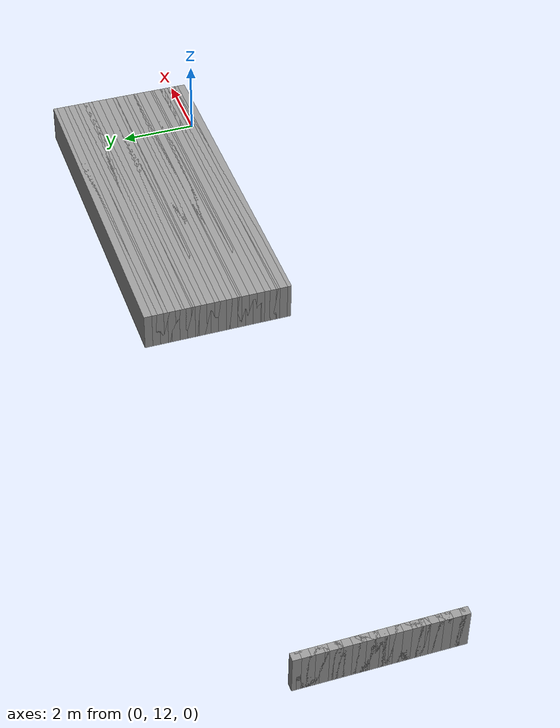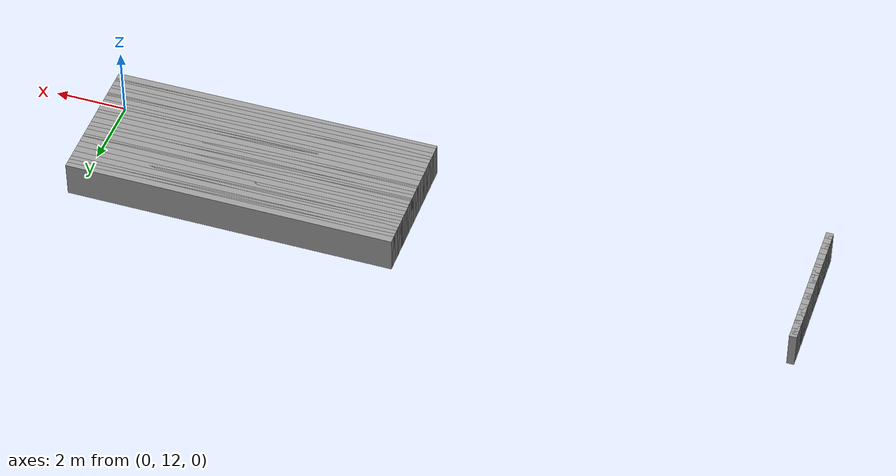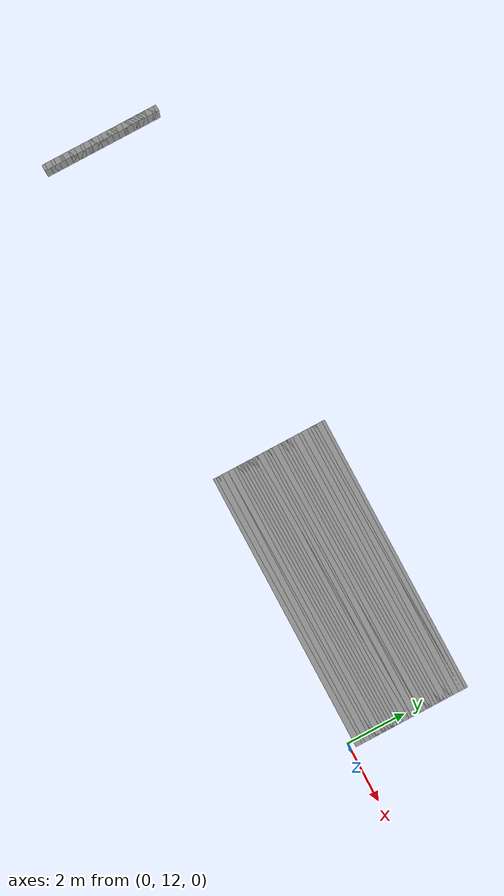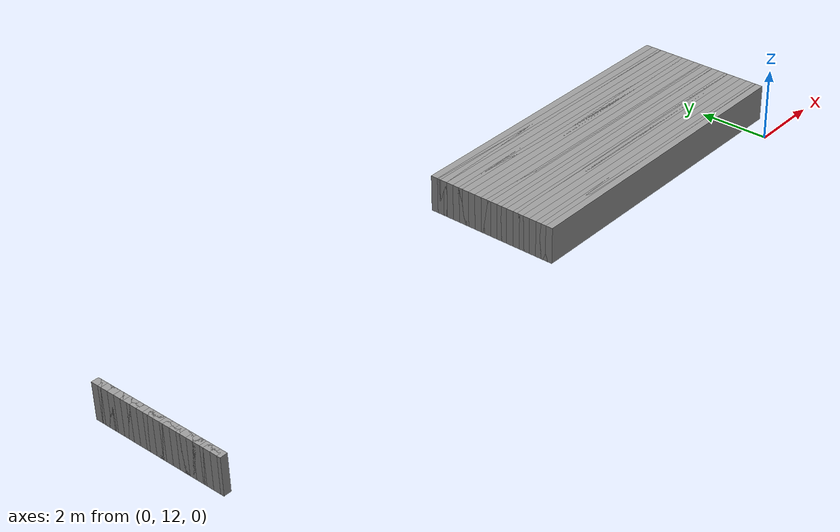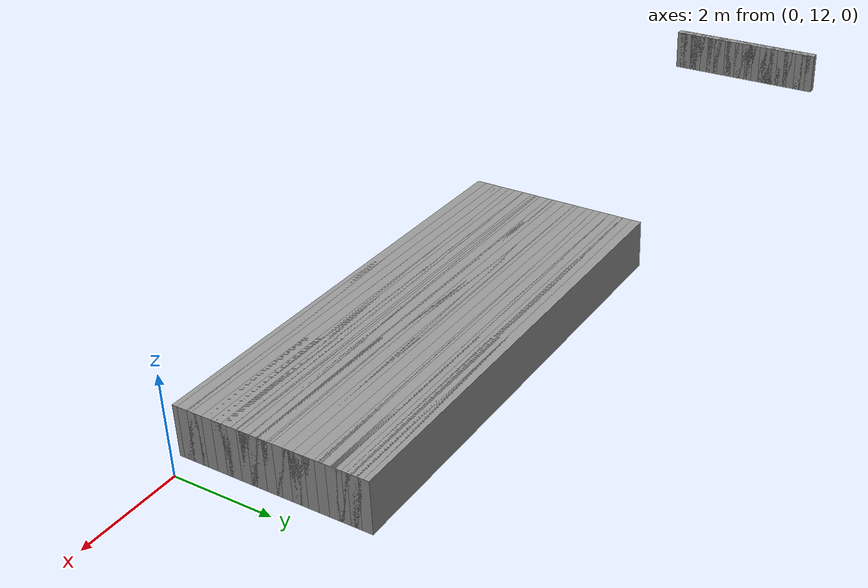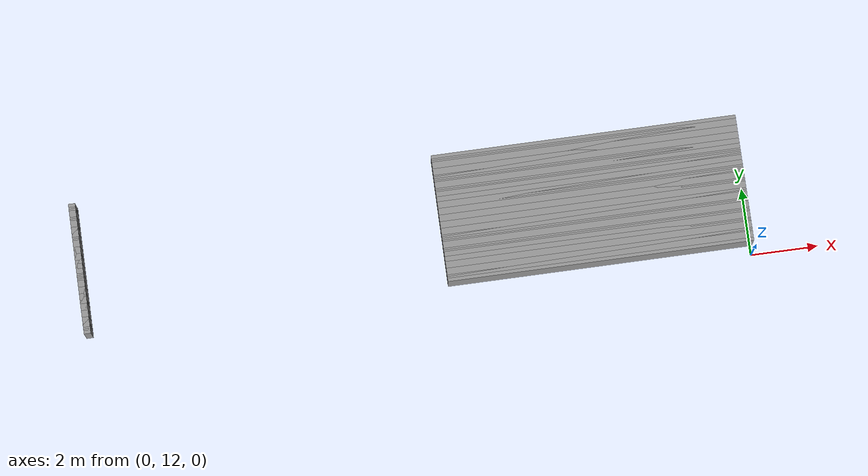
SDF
<sdf version="1.6">
 <world name="GridMap">
  <model name="GridMap">
   <link name="Wall_(198.0,122.0)">
    <collision name="Wall_(198.0,122.0)_Collision">
     <geometry><box><size>0.2 0.2 1.0</size></box></geometry>
     <pose>-19.8 12.2 0.5 0 -0 0</pose>
    </collision>
    <visual name="Wall_(198.0,122.0)_Visual">
     <geometry><box><size>0.2 0.2 1.0</size></box></geometry>
     <pose>-19.8 12.2 0.5 0 -0 0</pose>
     <material>
      <script><uri>file://media/materials/scripts/gazebo.material</uri><name>Gazebo/Grey</name></script>
      <ambient>1 1 1 1</ambient>
     </material>
     <meta><layer>0</layer></meta>
    </visual>
    <pose>0 0 0.5 0 -0 0</pose>
   </link>
   <link name="Wall_(45.5,123.0)">
    <collision name="Wall_(45.5,123.0)_Collision">
     <geometry><box><size>9.1 0.2 1.0</size></box></geometry>
     <pose>-4.55 12.3 0.5 0 -0 0</pose>
    </collision>
    <visual name="Wall_(45.5,123.0)_Visual">
     <geometry><box><size>9.1 0.2 1.0</size></box></geometry>
     <pose>-4.55 12.3 0.5 0 -0 0</pose>
     <material>
      <script><uri>file://media/materials/scripts/gazebo.material</uri><name>Gazebo/Grey</name></script>
      <ambient>1 1 1 1</ambient>
     </material>
     <meta><layer>0</layer></meta>
    </visual>
    <pose>0 0 0.5 0 -0 0</pose>
   </link>
   <link name="Wall_(198.0,123.0)">
    <collision name="Wall_(198.0,123.0)_Collision">
     <geometry><box><size>0.2 0.2 1.0</size></box></geometry>
     <pose>-19.8 12.3 0.5 0 -0 0</pose>
    </collision>
    <visual name="Wall_(198.0,123.0)_Visual">
     <geometry><box><size>0.2 0.2 1.0</size></box></geometry>
     <pose>-19.8 12.3 0.5 0 -0 0</pose>
     <material>
      <script><uri>file://media/materials/scripts/gazebo.material</uri><name>Gazebo/Grey</name></script>
      <ambient>1 1 1 1</ambient>
     </material>
     <meta><layer>0</layer></meta>
    </visual>
    <pose>0 0 0.5 0 -0 0</pose>
   </link>
   <link name="Wall_(45.5,124.0)">
    <collision name="Wall_(45.5,124.0)_Collision">
     <geometry><box><size>9.1 0.2 1.0</size></box></geometry>
     <pose>-4.55 12.4 0.5 0 -0 0</pose>
    </collision>
    <visual name="Wall_(45.5,124.0)_Visual">
     <geometry><box><size>9.1 0.2 1.0</size></box></geometry>
     <pose>-4.55 12.4 0.5 0 -0 0</pose>
     <material>
      <script><uri>file://media/materials/scripts/gazebo.material</uri><name>Gazebo/Grey</name></script>
      <ambient>1 1 1 1</ambient>
     </material>
     <meta><layer>0</layer></meta>
    </visual>
    <pose>0 0 0.5 0 -0 0</pose>
   </link>
   <link name="Wall_(198.0,124.0)">
    <collision name="Wall_(198.0,124.0)_Collision">
     <geometry><box><size>0.2 0.2 1.0</size></box></geometry>
     <pose>-19.8 12.4 0.5 0 -0 0</pose>
    </collision>
    <visual name="Wall_(198.0,124.0)_Visual">
     <geometry><box><size>0.2 0.2 1.0</size></box></geometry>
     <pose>-19.8 12.4 0.5 0 -0 0</pose>
     <material>
      <script><uri>file://media/materials/scripts/gazebo.material</uri><name>Gazebo/Grey</name></script>
      <ambient>1 1 1 1</ambient>
     </material>
     <meta><layer>0</layer></meta>
    </visual>
    <pose>0 0 0.5 0 -0 0</pose>
   </link>
   <link name="Wall_(45.5,125.0)">
    <collision name="Wall_(45.5,125.0)_Collision">
     <geometry><box><size>9.1 0.2 1.0</size></box></geometry>
     <pose>-4.55 12.5 0.5 0 -0 0</pose>
    </collision>
    <visual name="Wall_(45.5,125.0)_Visual">
     <geometry><box><size>9.1 0.2 1.0</size></box></geometry>
     <pose>-4.55 12.5 0.5 0 -0 0</pose>
     <material>
      <script><uri>file://media/materials/scripts/gazebo.material</uri><name>Gazebo/Grey</name></script>
      <ambient>1 1 1 1</ambient>
     </material>
     <meta><layer>0</layer></meta>
    </visual>
    <pose>0 0 0.5 0 -0 0</pose>
   </link>
   <link name="Wall_(198.0,125.0)">
    <collision name="Wall_(198.0,125.0)_Collision">
     <geometry><box><size>0.2 0.2 1.0</size></box></geometry>
     <pose>-19.8 12.5 0.5 0 -0 0</pose>
    </collision>
    <visual name="Wall_(198.0,125.0)_Visual">
     <geometry><box><size>0.2 0.2 1.0</size></box></geometry>
     <pose>-19.8 12.5 0.5 0 -0 0</pose>
     <material>
      <script><uri>file://media/materials/scripts/gazebo.material</uri><name>Gazebo/Grey</name></script>
      <ambient>1 1 1 1</ambient>
     </material>
     <meta><layer>0</layer></meta>
    </visual>
    <pose>0 0 0.5 0 -0 0</pose>
   </link>
   <link name="Wall_(45.5,126.0)">
    <collision name="Wall_(45.5,126.0)_Collision">
     <geometry><box><size>9.1 0.2 1.0</size></box></geometry>
     <pose>-4.55 12.6 0.5 0 -0 0</pose>
    </collision>
    <visual name="Wall_(45.5,126.0)_Visual">
     <geometry><box><size>9.1 0.2 1.0</size></box></geometry>
     <pose>-4.55 12.6 0.5 0 -0 0</pose>
     <material>
      <script><uri>file://media/materials/scripts/gazebo.material</uri><name>Gazebo/Grey</name></script>
      <ambient>1 1 1 1</ambient>
     </material>
     <meta><layer>0</layer></meta>
    </visual>
    <pose>0 0 0.5 0 -0 0</pose>
   </link>
   <link name="Wall_(198.0,126.0)">
    <collision name="Wall_(198.0,126.0)_Collision">
     <geometry><box><size>0.2 0.2 1.0</size></box></geometry>
     <pose>-19.8 12.6 0.5 0 -0 0</pose>
    </collision>
    <visual name="Wall_(198.0,126.0)_Visual">
     <geometry><box><size>0.2 0.2 1.0</size></box></geometry>
     <pose>-19.8 12.6 0.5 0 -0 0</pose>
     <material>
      <script><uri>file://media/materials/scripts/gazebo.material</uri><name>Gazebo/Grey</name></script>
      <ambient>1 1 1 1</ambient>
     </material>
     <meta><layer>0</layer></meta>
    </visual>
    <pose>0 0 0.5 0 -0 0</pose>
   </link>
   <link name="Wall_(45.5,127.0)">
    <collision name="Wall_(45.5,127.0)_Collision">
     <geometry><box><size>9.1 0.2 1.0</size></box></geometry>
     <pose>-4.55 12.7 0.5 0 -0 0</pose>
    </collision>
    <visual name="Wall_(45.5,127.0)_Visual">
     <geometry><box><size>9.1 0.2 1.0</size></box></geometry>
     <pose>-4.55 12.7 0.5 0 -0 0</pose>
     <material>
      <script><uri>file://media/materials/scripts/gazebo.material</uri><name>Gazebo/Grey</name></script>
      <ambient>1 1 1 1</ambient>
     </material>
     <meta><layer>0</layer></meta>
    </visual>
    <pose>0 0 0.5 0 -0 0</pose>
   </link>
   <link name="Wall_(198.0,127.0)">
    <collision name="Wall_(198.0,127.0)_Collision">
     <geometry><box><size>0.2 0.2 1.0</size></box></geometry>
     <pose>-19.8 12.7 0.5 0 -0 0</pose>
    </collision>
    <visual name="Wall_(198.0,127.0)_Visual">
     <geometry><box><size>0.2 0.2 1.0</size></box></geometry>
     <pose>-19.8 12.7 0.5 0 -0 0</pose>
     <material>
      <script><uri>file://media/materials/scripts/gazebo.material</uri><name>Gazebo/Grey</name></script>
      <ambient>1 1 1 1</ambient>
     </material>
     <meta><layer>0</layer></meta>
    </visual>
    <pose>0 0 0.5 0 -0 0</pose>
   </link>
   <link name="Wall_(45.5,128.0)">
    <collision name="Wall_(45.5,128.0)_Collision">
     <geometry><box><size>9.1 0.2 1.0</size></box></geometry>
     <pose>-4.55 12.8 0.5 0 -0 0</pose>
    </collision>
    <visual name="Wall_(45.5,128.0)_Visual">
     <geometry><box><size>9.1 0.2 1.0</size></box></geometry>
     <pose>-4.55 12.8 0.5 0 -0 0</pose>
     <material>
      <script><uri>file://media/materials/scripts/gazebo.material</uri><name>Gazebo/Grey</name></script>
      <ambient>1 1 1 1</ambient>
     </material>
     <meta><layer>0</layer></meta>
    </visual>
    <pose>0 0 0.5 0 -0 0</pose>
   </link>
   <link name="Wall_(198.0,128.0)">
    <collision name="Wall_(198.0,128.0)_Collision">
     <geometry><box><size>0.2 0.2 1.0</size></box></geometry>
     <pose>-19.8 12.8 0.5 0 -0 0</pose>
    </collision>
    <visual name="Wall_(198.0,128.0)_Visual">
     <geometry><box><size>0.2 0.2 1.0</size></box></geometry>
     <pose>-19.8 12.8 0.5 0 -0 0</pose>
     <material>
      <script><uri>file://media/materials/scripts/gazebo.material</uri><name>Gazebo/Grey</name></script>
      <ambient>1 1 1 1</ambient>
     </material>
     <meta><layer>0</layer></meta>
    </visual>
    <pose>0 0 0.5 0 -0 0</pose>
   </link>
   <link name="Wall_(45.5,129.0)">
    <collision name="Wall_(45.5,129.0)_Collision">
     <geometry><box><size>9.1 0.2 1.0</size></box></geometry>
     <pose>-4.55 12.9 0.5 0 -0 0</pose>
    </collision>
    <visual name="Wall_(45.5,129.0)_Visual">
     <geometry><box><size>9.1 0.2 1.0</size></box></geometry>
     <pose>-4.55 12.9 0.5 0 -0 0</pose>
     <material>
      <script><uri>file://media/materials/scripts/gazebo.material</uri><name>Gazebo/Grey</name></script>
      <ambient>1 1 1 1</ambient>
     </material>
     <meta><layer>0</layer></meta>
    </visual>
    <pose>0 0 0.5 0 -0 0</pose>
   </link>
   <link name="Wall_(198.0,129.0)">
    <collision name="Wall_(198.0,129.0)_Collision">
     <geometry><box><size>0.2 0.2 1.0</size></box></geometry>
     <pose>-19.8 12.9 0.5 0 -0 0</pose>
    </collision>
    <visual name="Wall_(198.0,129.0)_Visual">
     <geometry><box><size>0.2 0.2 1.0</size></box></geometry>
     <pose>-19.8 12.9 0.5 0 -0 0</pose>
     <material>
      <script><uri>file://media/materials/scripts/gazebo.material</uri><name>Gazebo/Grey</name></script>
      <ambient>1 1 1 1</ambient>
     </material>
     <meta><layer>0</layer></meta>
    </visual>
    <pose>0 0 0.5 0 -0 0</pose>
   </link>
   <link name="Wall_(45.5,130.0)">
    <collision name="Wall_(45.5,130.0)_Collision">
     <geometry><box><size>9.1 0.2 1.0</size></box></geometry>
     <pose>-4.55 13.0 0.5 0 -0 0</pose>
    </collision>
    <visual name="Wall_(45.5,130.0)_Visual">
     <geometry><box><size>9.1 0.2 1.0</size></box></geometry>
     <pose>-4.55 13.0 0.5 0 -0 0</pose>
     <material>
      <script><uri>file://media/materials/scripts/gazebo.material</uri><name>Gazebo/Grey</name></script>
      <ambient>1 1 1 1</ambient>
     </material>
     <meta><layer>0</layer></meta>
    </visual>
    <pose>0 0 0.5 0 -0 0</pose>
   </link>
   <link name="Wall_(198.0,130.0)">
    <collision name="Wall_(198.0,130.0)_Collision">
     <geometry><box><size>0.2 0.2 1.0</size></box></geometry>
     <pose>-19.8 13.0 0.5 0 -0 0</pose>
    </collision>
    <visual name="Wall_(198.0,130.0)_Visual">
     <geometry><box><size>0.2 0.2 1.0</size></box></geometry>
     <pose>-19.8 13.0 0.5 0 -0 0</pose>
     <material>
      <script><uri>file://media/materials/scripts/gazebo.material</uri><name>Gazebo/Grey</name></script>
      <ambient>1 1 1 1</ambient>
     </material>
     <meta><layer>0</layer></meta>
    </visual>
    <pose>0 0 0.5 0 -0 0</pose>
   </link>
   <link name="Wall_(45.5,131.0)">
    <collision name="Wall_(45.5,131.0)_Collision">
     <geometry><box><size>9.1 0.2 1.0</size></box></geometry>
     <pose>-4.55 13.1 0.5 0 -0 0</pose>
    </collision>
    <visual name="Wall_(45.5,131.0)_Visual">
     <geometry><box><size>9.1 0.2 1.0</size></box></geometry>
     <pose>-4.55 13.1 0.5 0 -0 0</pose>
     <material>
      <script><uri>file://media/materials/scripts/gazebo.material</uri><name>Gazebo/Grey</name></script>
      <ambient>1 1 1 1</ambient>
     </material>
     <meta><layer>0</layer></meta>
    </visual>
    <pose>0 0 0.5 0 -0 0</pose>
   </link>
   <link name="Wall_(198.0,131.0)">
    <collision name="Wall_(198.0,131.0)_Collision">
     <geometry><box><size>0.2 0.2 1.0</size></box></geometry>
     <pose>-19.8 13.1 0.5 0 -0 0</pose>
    </collision>
    <visual name="Wall_(198.0,131.0)_Visual">
     <geometry><box><size>0.2 0.2 1.0</size></box></geometry>
     <pose>-19.8 13.1 0.5 0 -0 0</pose>
     <material>
      <script><uri>file://media/materials/scripts/gazebo.material</uri><name>Gazebo/Grey</name></script>
      <ambient>1 1 1 1</ambient>
     </material>
     <meta><layer>0</layer></meta>
    </visual>
    <pose>0 0 0.5 0 -0 0</pose>
   </link>
   <link name="Wall_(45.5,132.0)">
    <collision name="Wall_(45.5,132.0)_Collision">
     <geometry><box><size>9.1 0.2 1.0</size></box></geometry>
     <pose>-4.55 13.2 0.5 0 -0 0</pose>
    </collision>
    <visual name="Wall_(45.5,132.0)_Visual">
     <geometry><box><size>9.1 0.2 1.0</size></box></geometry>
     <pose>-4.55 13.2 0.5 0 -0 0</pose>
     <material>
      <script><uri>file://media/materials/scripts/gazebo.material</uri><name>Gazebo/Grey</name></script>
      <ambient>1 1 1 1</ambient>
     </material>
     <meta><layer>0</layer></meta>
    </visual>
    <pose>0 0 0.5 0 -0 0</pose>
   </link>
   <link name="Wall_(198.0,132.0)">
    <collision name="Wall_(198.0,132.0)_Collision">
     <geometry><box><size>0.2 0.2 1.0</size></box></geometry>
     <pose>-19.8 13.2 0.5 0 -0 0</pose>
    </collision>
    <visual name="Wall_(198.0,132.0)_Visual">
     <geometry><box><size>0.2 0.2 1.0</size></box></geometry>
     <pose>-19.8 13.2 0.5 0 -0 0</pose>
     <material>
      <script><uri>file://media/materials/scripts/gazebo.material</uri><name>Gazebo/Grey</name></script>
      <ambient>1 1 1 1</ambient>
     </material>
     <meta><layer>0</layer></meta>
    </visual>
    <pose>0 0 0.5 0 -0 0</pose>
   </link>
   <link name="Wall_(45.5,133.0)">
    <collision name="Wall_(45.5,133.0)_Collision">
     <geometry><box><size>9.1 0.2 1.0</size></box></geometry>
     <pose>-4.55 13.3 0.5 0 -0 0</pose>
    </collision>
    <visual name="Wall_(45.5,133.0)_Visual">
     <geometry><box><size>9.1 0.2 1.0</size></box></geometry>
     <pose>-4.55 13.3 0.5 0 -0 0</pose>
     <material>
      <script><uri>file://media/materials/scripts/gazebo.material</uri><name>Gazebo/Grey</name></script>
      <ambient>1 1 1 1</ambient>
     </material>
     <meta><layer>0</layer></meta>
    </visual>
    <pose>0 0 0.5 0 -0 0</pose>
   </link>
   <link name="Wall_(198.0,133.0)">
    <collision name="Wall_(198.0,133.0)_Collision">
     <geometry><box><size>0.2 0.2 1.0</size></box></geometry>
     <pose>-19.8 13.3 0.5 0 -0 0</pose>
    </collision>
    <visual name="Wall_(198.0,133.0)_Visual">
     <geometry><box><size>0.2 0.2 1.0</size></box></geometry>
     <pose>-19.8 13.3 0.5 0 -0 0</pose>
     <material>
      <script><uri>file://media/materials/scripts/gazebo.material</uri><name>Gazebo/Grey</name></script>
      <ambient>1 1 1 1</ambient>
     </material>
     <meta><layer>0</layer></meta>
    </visual>
    <pose>0 0 0.5 0 -0 0</pose>
   </link>
   <link name="Wall_(45.5,134.0)">
    <collision name="Wall_(45.5,134.0)_Collision">
     <geometry><box><size>9.1 0.2 1.0</size></box></geometry>
     <pose>-4.55 13.4 0.5 0 -0 0</pose>
    </collision>
    <visual name="Wall_(45.5,134.0)_Visual">
     <geometry><box><size>9.1 0.2 1.0</size></box></geometry>
     <pose>-4.55 13.4 0.5 0 -0 0</pose>
     <material>
      <script><uri>file://media/materials/scripts/gazebo.material</uri><name>Gazebo/Grey</name></script>
      <ambient>1 1 1 1</ambient>
     </material>
     <meta><layer>0</layer></meta>
    </visual>
    <pose>0 0 0.5 0 -0 0</pose>
   </link>
   <link name="Wall_(198.0,134.0)">
    <collision name="Wall_(198.0,134.0)_Collision">
     <geometry><box><size>0.2 0.2 1.0</size></box></geometry>
     <pose>-19.8 13.4 0.5 0 -0 0</pose>
    </collision>
    <visual name="Wall_(198.0,134.0)_Visual">
     <geometry><box><size>0.2 0.2 1.0</size></box></geometry>
     <pose>-19.8 13.4 0.5 0 -0 0</pose>
     <material>
      <script><uri>file://media/materials/scripts/gazebo.material</uri><name>Gazebo/Grey</name></script>
      <ambient>1 1 1 1</ambient>
     </material>
     <meta><layer>0</layer></meta>
    </visual>
    <pose>0 0 0.5 0 -0 0</pose>
   </link>
   <link name="Wall_(45.5,135.0)">
    <collision name="Wall_(45.5,135.0)_Collision">
     <geometry><box><size>9.1 0.2 1.0</size></box></geometry>
     <pose>-4.55 13.5 0.5 0 -0 0</pose>
    </collision>
    <visual name="Wall_(45.5,135.0)_Visual">
     <geometry><box><size>9.1 0.2 1.0</size></box></geometry>
     <pose>-4.55 13.5 0.5 0 -0 0</pose>
     <material>
      <script><uri>file://media/materials/scripts/gazebo.material</uri><name>Gazebo/Grey</name></script>
      <ambient>1 1 1 1</ambient>
     </material>
     <meta><layer>0</layer></meta>
    </visual>
    <pose>0 0 0.5 0 -0 0</pose>
   </link>
   <link name="Wall_(198.0,135.0)">
    <collision name="Wall_(198.0,135.0)_Collision">
     <geometry><box><size>0.2 0.2 1.0</size></box></geometry>
     <pose>-19.8 13.5 0.5 0 -0 0</pose>
    </collision>
    <visual name="Wall_(198.0,135.0)_Visual">
     <geometry><box><size>0.2 0.2 1.0</size></box></geometry>
     <pose>-19.8 13.5 0.5 0 -0 0</pose>
     <material>
      <script><uri>file://media/materials/scripts/gazebo.material</uri><name>Gazebo/Grey</name></script>
      <ambient>1 1 1 1</ambient>
     </material>
     <meta><layer>0</layer></meta>
    </visual>
    <pose>0 0 0.5 0 -0 0</pose>
   </link>
   <link name="Wall_(45.5,136.0)">
    <collision name="Wall_(45.5,136.0)_Collision">
     <geometry><box><size>9.1 0.2 1.0</size></box></geometry>
     <pose>-4.55 13.6 0.5 0 -0 0</pose>
    </collision>
    <visual name="Wall_(45.5,136.0)_Visual">
     <geometry><box><size>9.1 0.2 1.0</size></box></geometry>
     <pose>-4.55 13.6 0.5 0 -0 0</pose>
     <material>
      <script><uri>file://media/materials/scripts/gazebo.material</uri><name>Gazebo/Grey</name></script>
      <ambient>1 1 1 1</ambient>
     </material>
     <meta><layer>0</layer></meta>
    </visual>
    <pose>0 0 0.5 0 -0 0</pose>
   </link>
   <link name="Wall_(198.0,136.0)">
    <collision name="Wall_(198.0,136.0)_Collision">
     <geometry><box><size>0.2 0.2 1.0</size></box></geometry>
     <pose>-19.8 13.6 0.5 0 -0 0</pose>
    </collision>
    <visual name="Wall_(198.0,136.0)_Visual">
     <geometry><box><size>0.2 0.2 1.0</size></box></geometry>
     <pose>-19.8 13.6 0.5 0 -0 0</pose>
     <material>
      <script><uri>file://media/materials/scripts/gazebo.material</uri><name>Gazebo/Grey</name></script>
      <ambient>1 1 1 1</ambient>
     </material>
     <meta><layer>0</layer></meta>
    </visual>
    <pose>0 0 0.5 0 -0 0</pose>
   </link>
   <link name="Wall_(45.5,137.0)">
    <collision name="Wall_(45.5,137.0)_Collision">
     <geometry><box><size>9.1 0.2 1.0</size></box></geometry>
     <pose>-4.55 13.7 0.5 0 -0 0</pose>
    </collision>
    <visual name="Wall_(45.5,137.0)_Visual">
     <geometry><box><size>9.1 0.2 1.0</size></box></geometry>
     <pose>-4.55 13.7 0.5 0 -0 0</pose>
     <material>
      <script><uri>file://media/materials/scripts/gazebo.material</uri><name>Gazebo/Grey</name></script>
      <ambient>1 1 1 1</ambient>
     </material>
     <meta><layer>0</layer></meta>
    </visual>
    <pose>0 0 0.5 0 -0 0</pose>
   </link>
   <link name="Wall_(198.0,137.0)">
    <collision name="Wall_(198.0,137.0)_Collision">
     <geometry><box><size>0.2 0.2 1.0</size></box></geometry>
     <pose>-19.8 13.7 0.5 0 -0 0</pose>
    </collision>
    <visual name="Wall_(198.0,137.0)_Visual">
     <geometry><box><size>0.2 0.2 1.0</size></box></geometry>
     <pose>-19.8 13.7 0.5 0 -0 0</pose>
     <material>
      <script><uri>file://media/materials/scripts/gazebo.material</uri><name>Gazebo/Grey</name></script>
      <ambient>1 1 1 1</ambient>
     </material>
     <meta><layer>0</layer></meta>
    </visual>
    <pose>0 0 0.5 0 -0 0</pose>
   </link>
   <link name="Wall_(45.5,138.0)">
    <collision name="Wall_(45.5,138.0)_Collision">
     <geometry><box><size>9.1 0.2 1.0</size></box></geometry>
     <pose>-4.55 13.8 0.5 0 -0 0</pose>
    </collision>
    <visual name="Wall_(45.5,138.0)_Visual">
     <geometry><box><size>9.1 0.2 1.0</size></box></geometry>
     <pose>-4.55 13.8 0.5 0 -0 0</pose>
     <material>
      <script><uri>file://media/materials/scripts/gazebo.material</uri><name>Gazebo/Grey</name></script>
      <ambient>1 1 1 1</ambient>
     </material>
     <meta><layer>0</layer></meta>
    </visual>
    <pose>0 0 0.5 0 -0 0</pose>
   </link>
   <link name="Wall_(198.0,138.0)">
    <collision name="Wall_(198.0,138.0)_Collision">
     <geometry><box><size>0.2 0.2 1.0</size></box></geometry>
     <pose>-19.8 13.8 0.5 0 -0 0</pose>
    </collision>
    <visual name="Wall_(198.0,138.0)_Visual">
     <geometry><box><size>0.2 0.2 1.0</size></box></geometry>
     <pose>-19.8 13.8 0.5 0 -0 0</pose>
     <material>
      <script><uri>file://media/materials/scripts/gazebo.material</uri><name>Gazebo/Grey</name></script>
      <ambient>1 1 1 1</ambient>
     </material>
     <meta><layer>0</layer></meta>
    </visual>
    <pose>0 0 0.5 0 -0 0</pose>
   </link>
   <link name="Wall_(45.5,139.0)">
    <collision name="Wall_(45.5,139.0)_Collision">
     <geometry><box><size>9.1 0.2 1.0</size></box></geometry>
     <pose>-4.55 13.9 0.5 0 -0 0</pose>
    </collision>
    <visual name="Wall_(45.5,139.0)_Visual">
     <geometry><box><size>9.1 0.2 1.0</size></box></geometry>
     <pose>-4.55 13.9 0.5 0 -0 0</pose>
     <material>
      <script><uri>file://media/materials/scripts/gazebo.material</uri><name>Gazebo/Grey</name></script>
      <ambient>1 1 1 1</ambient>
     </material>
     <meta><layer>0</layer></meta>
    </visual>
    <pose>0 0 0.5 0 -0 0</pose>
   </link>
   <link name="Wall_(198.0,139.0)">
    <collision name="Wall_(198.0,139.0)_Collision">
     <geometry><box><size>0.2 0.2 1.0</size></box></geometry>
     <pose>-19.8 13.9 0.5 0 -0 0</pose>
    </collision>
    <visual name="Wall_(198.0,139.0)_Visual">
     <geometry><box><size>0.2 0.2 1.0</size></box></geometry>
     <pose>-19.8 13.9 0.5 0 -0 0</pose>
     <material>
      <script><uri>file://media/materials/scripts/gazebo.material</uri><name>Gazebo/Grey</name></script>
      <ambient>1 1 1 1</ambient>
     </material>
     <meta><layer>0</layer></meta>
    </visual>
    <pose>0 0 0.5 0 -0 0</pose>
   </link>
   <link name="Wall_(45.5,140.0)">
    <collision name="Wall_(45.5,140.0)_Collision">
     <geometry><box><size>9.1 0.2 1.0</size></box></geometry>
     <pose>-4.55 14.0 0.5 0 -0 0</pose>
    </collision>
    <visual name="Wall_(45.5,140.0)_Visual">
     <geometry><box><size>9.1 0.2 1.0</size></box></geometry>
     <pose>-4.55 14.0 0.5 0 -0 0</pose>
     <material>
      <script><uri>file://media/materials/scripts/gazebo.material</uri><name>Gazebo/Grey</name></script>
      <ambient>1 1 1 1</ambient>
     </material>
     <meta><layer>0</layer></meta>
    </visual>
    <pose>0 0 0.5 0 -0 0</pose>
   </link>
   <link name="Wall_(198.0,140.0)">
    <collision name="Wall_(198.0,140.0)_Collision">
     <geometry><box><size>0.2 0.2 1.0</size></box></geometry>
     <pose>-19.8 14.0 0.5 0 -0 0</pose>
    </collision>
    <visual name="Wall_(198.0,140.0)_Visual">
     <geometry><box><size>0.2 0.2 1.0</size></box></geometry>
     <pose>-19.8 14.0 0.5 0 -0 0</pose>
     <material>
      <script><uri>file://media/materials/scripts/gazebo.material</uri><name>Gazebo/Grey</name></script>
      <ambient>1 1 1 1</ambient>
     </material>
     <meta><layer>0</layer></meta>
    </visual>
    <pose>0 0 0.5 0 -0 0</pose>
   </link>
   <link name="Wall_(45.5,141.0)">
    <collision name="Wall_(45.5,141.0)_Collision">
     <geometry><box><size>9.1 0.2 1.0</size></box></geometry>
     <pose>-4.55 14.1 0.5 0 -0 0</pose>
    </collision>
    <visual name="Wall_(45.5,141.0)_Visual">
     <geometry><box><size>9.1 0.2 1.0</size></box></geometry>
     <pose>-4.55 14.1 0.5 0 -0 0</pose>
     <material>
      <script><uri>file://media/materials/scripts/gazebo.material</uri><name>Gazebo/Grey</name></script>
      <ambient>1 1 1 1</ambient>
     </material>
     <meta><layer>0</layer></meta>
    </visual>
    <pose>0 0 0.5 0 -0 0</pose>
   </link>
   <link name="Wall_(198.0,141.0)">
    <collision name="Wall_(198.0,141.0)_Collision">
     <geometry><box><size>0.2 0.2 1.0</size></box></geometry>
     <pose>-19.8 14.1 0.5 0 -0 0</pose>
    </collision>
    <visual name="Wall_(198.0,141.0)_Visual">
     <geometry><box><size>0.2 0.2 1.0</size></box></geometry>
     <pose>-19.8 14.1 0.5 0 -0 0</pose>
     <material>
      <script><uri>file://media/materials/scripts/gazebo.material</uri><name>Gazebo/Grey</name></script>
      <ambient>1 1 1 1</ambient>
     </material>
     <meta><layer>0</layer></meta>
    </visual>
    <pose>0 0 0.5 0 -0 0</pose>
   </link>
   <link name="Wall_(45.5,142.0)">
    <collision name="Wall_(45.5,142.0)_Collision">
     <geometry><box><size>9.1 0.2 1.0</size></box></geometry>
     <pose>-4.55 14.2 0.5 0 -0 0</pose>
    </collision>
    <visual name="Wall_(45.5,142.0)_Visual">
     <geometry><box><size>9.1 0.2 1.0</size></box></geometry>
     <pose>-4.55 14.2 0.5 0 -0 0</pose>
     <material>
      <script><uri>file://media/materials/scripts/gazebo.material</uri><name>Gazebo/Grey</name></script>
      <ambient>1 1 1 1</ambient>
     </material>
     <meta><layer>0</layer></meta>
    </visual>
    <pose>0 0 0.5 0 -0 0</pose>
   </link>
   <link name="Wall_(198.0,142.0)">
    <collision name="Wall_(198.0,142.0)_Collision">
     <geometry><box><size>0.2 0.2 1.0</size></box></geometry>
     <pose>-19.8 14.2 0.5 0 -0 0</pose>
    </collision>
    <visual name="Wall_(198.0,142.0)_Visual">
     <geometry><box><size>0.2 0.2 1.0</size></box></geometry>
     <pose>-19.8 14.2 0.5 0 -0 0</pose>
     <material>
      <script><uri>file://media/materials/scripts/gazebo.material</uri><name>Gazebo/Grey</name></script>
      <ambient>1 1 1 1</ambient>
     </material>
     <meta><layer>0</layer></meta>
    </visual>
    <pose>0 0 0.5 0 -0 0</pose>
   </link>
   <link name="Wall_(45.5,143.0)">
    <collision name="Wall_(45.5,143.0)_Collision">
     <geometry><box><size>9.1 0.2 1.0</size></box></geometry>
     <pose>-4.55 14.3 0.5 0 -0 0</pose>
    </collision>
    <visual name="Wall_(45.5,143.0)_Visual">
     <geometry><box><size>9.1 0.2 1.0</size></box></geometry>
     <pose>-4.55 14.3 0.5 0 -0 0</pose>
     <material>
      <script><uri>file://media/materials/scripts/gazebo.material</uri><name>Gazebo/Grey</name></script>
      <ambient>1 1 1 1</ambient>
     </material>
     <meta><layer>0</layer></meta>
    </visual>
    <pose>0 0 0.5 0 -0 0</pose>
   </link>
   <link name="Wall_(198.0,143.0)">
    <collision name="Wall_(198.0,143.0)_Collision">
     <geometry><box><size>0.2 0.2 1.0</size></box></geometry>
     <pose>-19.8 14.3 0.5 0 -0 0</pose>
    </collision>
    <visual name="Wall_(198.0,143.0)_Visual">
     <geometry><box><size>0.2 0.2 1.0</size></box></geometry>
     <pose>-19.8 14.3 0.5 0 -0 0</pose>
     <material>
      <script><uri>file://media/materials/scripts/gazebo.material</uri><name>Gazebo/Grey</name></script>
      <ambient>1 1 1 1</ambient>
     </material>
     <meta><layer>0</layer></meta>
    </visual>
    <pose>0 0 0.5 0 -0 0</pose>
   </link>
   <link name="Wall_(45.5,144.0)">
    <collision name="Wall_(45.5,144.0)_Collision">
     <geometry><box><size>9.1 0.2 1.0</size></box></geometry>
     <pose>-4.55 14.4 0.5 0 -0 0</pose>
    </collision>
    <visual name="Wall_(45.5,144.0)_Visual">
     <geometry><box><size>9.1 0.2 1.0</size></box></geometry>
     <pose>-4.55 14.4 0.5 0 -0 0</pose>
     <material>
      <script><uri>file://media/materials/scripts/gazebo.material</uri><name>Gazebo/Grey</name></script>
      <ambient>1 1 1 1</ambient>
     </material>
     <meta><layer>0</layer></meta>
    </visual>
    <pose>0 0 0.5 0 -0 0</pose>
   </link>
   <link name="Wall_(198.0,144.0)">
    <collision name="Wall_(198.0,144.0)_Collision">
     <geometry><box><size>0.2 0.2 1.0</size></box></geometry>
     <pose>-19.8 14.4 0.5 0 -0 0</pose>
    </collision>
    <visual name="Wall_(198.0,144.0)_Visual">
     <geometry><box><size>0.2 0.2 1.0</size></box></geometry>
     <pose>-19.8 14.4 0.5 0 -0 0</pose>
     <material>
      <script><uri>file://media/materials/scripts/gazebo.material</uri><name>Gazebo/Grey</name></script>
      <ambient>1 1 1 1</ambient>
     </material>
     <meta><layer>0</layer></meta>
    </visual>
    <pose>0 0 0.5 0 -0 0</pose>
   </link>
   <link name="Wall_(45.5,145.0)">
    <collision name="Wall_(45.5,145.0)_Collision">
     <geometry><box><size>9.1 0.2 1.0</size></box></geometry>
     <pose>-4.55 14.5 0.5 0 -0 0</pose>
    </collision>
    <visual name="Wall_(45.5,145.0)_Visual">
     <geometry><box><size>9.1 0.2 1.0</size></box></geometry>
     <pose>-4.55 14.5 0.5 0 -0 0</pose>
     <material>
      <script><uri>file://media/materials/scripts/gazebo.material</uri><name>Gazebo/Grey</name></script>
      <ambient>1 1 1 1</ambient>
     </material>
     <meta><layer>0</layer></meta>
    </visual>
    <pose>0 0 0.5 0 -0 0</pose>
   </link>
   <link name="Wall_(198.0,145.0)">
    <collision name="Wall_(198.0,145.0)_Collision">
     <geometry><box><size>0.2 0.2 1.0</size></box></geometry>
     <pose>-19.8 14.5 0.5 0 -0 0</pose>
    </collision>
    <visual name="Wall_(198.0,145.0)_Visual">
     <geometry><box><size>0.2 0.2 1.0</size></box></geometry>
     <pose>-19.8 14.5 0.5 0 -0 0</pose>
     <material>
      <script><uri>file://media/materials/scripts/gazebo.material</uri><name>Gazebo/Grey</name></script>
      <ambient>1 1 1 1</ambient>
     </material>
     <meta><layer>0</layer></meta>
    </visual>
    <pose>0 0 0.5 0 -0 0</pose>
   </link>
   <link name="Wall_(45.5,146.0)">
    <collision name="Wall_(45.5,146.0)_Collision">
     <geometry><box><size>9.1 0.2 1.0</size></box></geometry>
     <pose>-4.55 14.6 0.5 0 -0 0</pose>
    </collision>
    <visual name="Wall_(45.5,146.0)_Visual">
     <geometry><box><size>9.1 0.2 1.0</size></box></geometry>
     <pose>-4.55 14.6 0.5 0 -0 0</pose>
     <material>
      <script><uri>file://media/materials/scripts/gazebo.material</uri><name>Gazebo/Grey</name></script>
      <ambient>1 1 1 1</ambient>
     </material>
     <meta><layer>0</layer></meta>
    </visual>
    <pose>0 0 0.5 0 -0 0</pose>
   </link>
   <link name="Wall_(198.0,146.0)">
    <collision name="Wall_(198.0,146.0)_Collision">
     <geometry><box><size>0.2 0.2 1.0</size></box></geometry>
     <pose>-19.8 14.6 0.5 0 -0 0</pose>
    </collision>
    <visual name="Wall_(198.0,146.0)_Visual">
     <geometry><box><size>0.2 0.2 1.0</size></box></geometry>
     <pose>-19.8 14.6 0.5 0 -0 0</pose>
     <material>
      <script><uri>file://media/materials/scripts/gazebo.material</uri><name>Gazebo/Grey</name></script>
      <ambient>1 1 1 1</ambient>
     </material>
     <meta><layer>0</layer></meta>
    </visual>
    <pose>0 0 0.5 0 -0 0</pose>
   </link>
   <link name="Wall_(45.5,147.0)">
    <collision name="Wall_(45.5,147.0)_Collision">
     <geometry><box><size>9.1 0.2 1.0</size></box></geometry>
     <pose>-4.55 14.7 0.5 0 -0 0</pose>
    </collision>
    <visual name="Wall_(45.5,147.0)_Visual">
     <geometry><box><size>9.1 0.2 1.0</size></box></geometry>
     <pose>-4.55 14.7 0.5 0 -0 0</pose>
     <material>
      <script><uri>file://media/materials/scripts/gazebo.material</uri><name>Gazebo/Grey</name></script>
      <ambient>1 1 1 1</ambient>
     </material>
     <meta><layer>0</layer></meta>
    </visual>
    <pose>0 0 0.5 0 -0 0</pose>
   </link>
   <link name="Wall_(198.0,147.0)">
    <collision name="Wall_(198.0,147.0)_Collision">
     <geometry><box><size>0.2 0.2 1.0</size></box></geometry>
     <pose>-19.8 14.7 0.5 0 -0 0</pose>
    </collision>
    <visual name="Wall_(198.0,147.0)_Visual">
     <geometry><box><size>0.2 0.2 1.0</size></box></geometry>
     <pose>-19.8 14.7 0.5 0 -0 0</pose>
     <material>
      <script><uri>file://media/materials/scripts/gazebo.material</uri><name>Gazebo/Grey</name></script>
      <ambient>1 1 1 1</ambient>
     </material>
     <meta><layer>0</layer></meta>
    </visual>
    <pose>0 0 0.5 0 -0 0</pose>
   </link>
   <link name="Wall_(45.5,148.0)">
    <collision name="Wall_(45.5,148.0)_Collision">
     <geometry><box><size>9.1 0.2 1.0</size></box></geometry>
     <pose>-4.55 14.8 0.5 0 -0 0</pose>
    </collision>
    <visual name="Wall_(45.5,148.0)_Visual">
     <geometry><box><size>9.1 0.2 1.0</size></box></geometry>
     <pose>-4.55 14.8 0.5 0 -0 0</pose>
     <material>
      <script><uri>file://media/materials/scripts/gazebo.material</uri><name>Gazebo/Grey</name></script>
      <ambient>1 1 1 1</ambient>
     </material>
     <meta><layer>0</layer></meta>
    </visual>
    <pose>0 0 0.5 0 -0 0</pose>
   </link>
   <link name="Wall_(198.0,148.0)">
    <collision name="Wall_(198.0,148.0)_Collision">
     <geometry><box><size>0.2 0.2 1.0</size></box></geometry>
     <pose>-19.8 14.8 0.5 0 -0 0</pose>
    </collision>
    <visual name="Wall_(198.0,148.0)_Visual">
     <geometry><box><size>0.2 0.2 1.0</size></box></geometry>
     <pose>-19.8 14.8 0.5 0 -0 0</pose>
     <material>
      <script><uri>file://media/materials/scripts/gazebo.material</uri><name>Gazebo/Grey</name></script>
      <ambient>1 1 1 1</ambient>
     </material>
     <meta><layer>0</layer></meta>
    </visual>
    <pose>0 0 0.5 0 -0 0</pose>
   </link>
   <link name="Wall_(45.5,149.0)">
    <collision name="Wall_(45.5,149.0)_Collision">
     <geometry><box><size>9.1 0.2 1.0</size></box></geometry>
     <pose>-4.55 14.9 0.5 0 -0 0</pose>
    </collision>
    <visual name="Wall_(45.5,149.0)_Visual">
     <geometry><box><size>9.1 0.2 1.0</size></box></geometry>
     <pose>-4.55 14.9 0.5 0 -0 0</pose>
     <material>
      <script><uri>file://media/materials/scripts/gazebo.material</uri><name>Gazebo/Grey</name></script>
      <ambient>1 1 1 1</ambient>
     </material>
     <meta><layer>0</layer></meta>
    </visual>
    <pose>0 0 0.5 0 -0 0</pose>
   </link>
   <link name="Wall_(198.0,149.0)">
    <collision name="Wall_(198.0,149.0)_Collision">
     <geometry><box><size>0.2 0.2 1.0</size></box></geometry>
     <pose>-19.8 14.9 0.5 0 -0 0</pose>
    </collision>
    <visual name="Wall_(198.0,149.0)_Visual">
     <geometry><box><size>0.2 0.2 1.0</size></box></geometry>
     <pose>-19.8 14.9 0.5 0 -0 0</pose>
     <material>
      <script><uri>file://media/materials/scripts/gazebo.material</uri><name>Gazebo/Grey</name></script>
      <ambient>1 1 1 1</ambient>
     </material>
     <meta><layer>0</layer></meta>
    </visual>
    <pose>0 0 0.5 0 -0 0</pose>
   </link>
   <link name="Wall_(45.5,150.0)">
    <collision name="Wall_(45.5,150.0)_Collision">
     <geometry><box><size>9.1 0.2 1.0</size></box></geometry>
     <pose>-4.55 15.0 0.5 0 -0 0</pose>
    </collision>
    <visual name="Wall_(45.5,150.0)_Visual">
     <geometry><box><size>9.1 0.2 1.0</size></box></geometry>
     <pose>-4.55 15.0 0.5 0 -0 0</pose>
     <material>
      <script><uri>file://media/materials/scripts/gazebo.material</uri><name>Gazebo/Grey</name></script>
      <ambient>1 1 1 1</ambient>
     </material>
     <meta><layer>0</layer></meta>
    </visual>
    <pose>0 0 0.5 0 -0 0</pose>
   </link>
   <link name="Wall_(198.0,150.0)">
    <collision name="Wall_(198.0,150.0)_Collision">
     <geometry><box><size>0.2 0.2 1.0</size></box></geometry>
     <pose>-19.8 15.0 0.5 0 -0 0</pose>
    </collision>
    <visual name="Wall_(198.0,150.0)_Visual">
     <geometry><box><size>0.2 0.2 1.0</size></box></geometry>
     <pose>-19.8 15.0 0.5 0 -0 0</pose>
     <material>
      <script><uri>file://media/materials/scripts/gazebo.material</uri><name>Gazebo/Grey</name></script>
      <ambient>1 1 1 1</ambient>
     </material>
     <meta><layer>0</layer></meta>
    </visual>
    <pose>0 0 0.5 0 -0 0</pose>
   </link>
   <link name="Wall_(45.5,151.0)">
    <collision name="Wall_(45.5,151.0)_Collision">
     <geometry><box><size>9.1 0.2 1.0</size></box></geometry>
     <pose>-4.55 15.1 0.5 0 -0 0</pose>
    </collision>
    <visual name="Wall_(45.5,151.0)_Visual">
     <geometry><box><size>9.1 0.2 1.0</size></box></geometry>
     <pose>-4.55 15.1 0.5 0 -0 0</pose>
     <material>
      <script><uri>file://media/materials/scripts/gazebo.material</uri><name>Gazebo/Grey</name></script>
      <ambient>1 1 1 1</ambient>
     </material>
     <meta><layer>0</layer></meta>
    </visual>
    <pose>0 0 0.5 0 -0 0</pose>
   </link>
   <link name="Wall_(198.0,151.0)">
    <collision name="Wall_(198.0,151.0)_Collision">
     <geometry><box><size>0.2 0.2 1.0</size></box></geometry>
     <pose>-19.8 15.1 0.5 0 -0 0</pose>
    </collision>
    <visual name="Wall_(198.0,151.0)_Visual">
     <geometry><box><size>0.2 0.2 1.0</size></box></geometry>
     <pose>-19.8 15.1 0.5 0 -0 0</pose>
     <material>
      <script><uri>file://media/materials/scripts/gazebo.material</uri><name>Gazebo/Grey</name></script>
      <ambient>1 1 1 1</ambient>
     </material>
     <meta><layer>0</layer></meta>
    </visual>
    <pose>0 0 0.5 0 -0 0</pose>
   </link>
   <link name="Wall_(45.5,152.0)">
    <collision name="Wall_(45.5,152.0)_Collision">
     <geometry><box><size>9.1 0.2 1.0</size></box></geometry>
     <pose>-4.55 15.2 0.5 0 -0 0</pose>
    </collision>
    <visual name="Wall_(45.5,152.0)_Visual">
     <geometry><box><size>9.1 0.2 1.0</size></box></geometry>
     <pose>-4.55 15.2 0.5 0 -0 0</pose>
     <material>
      <script><uri>file://media/materials/scripts/gazebo.material</uri><name>Gazebo/Grey</name></script>
      <ambient>1 1 1 1</ambient>
     </material>
     <meta><layer>0</layer></meta>
    </visual>
    <pose>0 0 0.5 0 -0 0</pose>
   </link>
   <link name="Wall_(198.0,152.0)">
    <collision name="Wall_(198.0,152.0)_Collision">
     <geometry><box><size>0.2 0.2 1.0</size></box></geometry>
     <pose>-19.8 15.2 0.5 0 -0 0</pose>
    </collision>
    <visual name="Wall_(198.0,152.0)_Visual">
     <geometry><box><size>0.2 0.2 1.0</size></box></geometry>
     <pose>-19.8 15.2 0.5 0 -0 0</pose>
     <material>
      <script><uri>file://media/materials/scripts/gazebo.material</uri><name>Gazebo/Grey</name></script>
      <ambient>1 1 1 1</ambient>
     </material>
     <meta><layer>0</layer></meta>
    </visual>
    <pose>0 0 0.5 0 -0 0</pose>
   </link>
   <link name="Wall_(45.5,153.0)">
    <collision name="Wall_(45.5,153.0)_Collision">
     <geometry><box><size>9.1 0.2 1.0</size></box></geometry>
     <pose>-4.55 15.3 0.5 0 -0 0</pose>
    </collision>
    <visual name="Wall_(45.5,153.0)_Visual">
     <geometry><box><size>9.1 0.2 1.0</size></box></geometry>
     <pose>-4.55 15.3 0.5 0 -0 0</pose>
     <material>
      <script><uri>file://media/materials/scripts/gazebo.material</uri><name>Gazebo/Grey</name></script>
      <ambient>1 1 1 1</ambient>
     </material>
     <meta><layer>0</layer></meta>
    </visual>
    <pose>0 0 0.5 0 -0 0</pose>
   </link>
   <link name="Wall_(198.0,153.0)">
    <collision name="Wall_(198.0,153.0)_Collision">
     <geometry><box><size>0.2 0.2 1.0</size></box></geometry>
     <pose>-19.8 15.3 0.5 0 -0 0</pose>
    </collision>
    <visual name="Wall_(198.0,153.0)_Visual">
     <geometry><box><size>0.2 0.2 1.0</size></box></geometry>
     <pose>-19.8 15.3 0.5 0 -0 0</pose>
     <material>
      <script><uri>file://media/materials/scripts/gazebo.material</uri><name>Gazebo/Grey</name></script>
      <ambient>1 1 1 1</ambient>
     </material>
     <meta><layer>0</layer></meta>
    </visual>
    <pose>0 0 0.5 0 -0 0</pose>
   </link>
   <link name="Wall_(45.5,154.0)">
    <collision name="Wall_(45.5,154.0)_Collision">
     <geometry><box><size>9.1 0.2 1.0</size></box></geometry>
     <pose>-4.55 15.4 0.5 0 -0 0</pose>
    </collision>
    <visual name="Wall_(45.5,154.0)_Visual">
     <geometry><box><size>9.1 0.2 1.0</size></box></geometry>
     <pose>-4.55 15.4 0.5 0 -0 0</pose>
     <material>
      <script><uri>file://media/materials/scripts/gazebo.material</uri><name>Gazebo/Grey</name></script>
      <ambient>1 1 1 1</ambient>
     </material>
     <meta><layer>0</layer></meta>
    </visual>
    <pose>0 0 0.5 0 -0 0</pose>
   </link>
   <link name="Wall_(198.0,154.0)">
    <collision name="Wall_(198.0,154.0)_Collision">
     <geometry><box><size>0.2 0.2 1.0</size></box></geometry>
     <pose>-19.8 15.4 0.5 0 -0 0</pose>
    </collision>
    <visual name="Wall_(198.0,154.0)_Visual">
     <geometry><box><size>0.2 0.2 1.0</size></box></geometry>
     <pose>-19.8 15.4 0.5 0 -0 0</pose>
     <material>
      <script><uri>file://media/materials/scripts/gazebo.material</uri><name>Gazebo/Grey</name></script>
      <ambient>1 1 1 1</ambient>
     </material>
     <meta><layer>0</layer></meta>
    </visual>
    <pose>0 0 0.5 0 -0 0</pose>
   </link>
   <link name="Wall_(45.5,155.0)">
    <collision name="Wall_(45.5,155.0)_Collision">
     <geometry><box><size>9.1 0.2 1.0</size></box></geometry>
     <pose>-4.55 15.5 0.5 0 -0 0</pose>
    </collision>
    <visual name="Wall_(45.5,155.0)_Visual">
     <geometry><box><size>9.1 0.2 1.0</size></box></geometry>
     <pose>-4.55 15.5 0.5 0 -0 0</pose>
     <material>
      <script><uri>file://media/materials/scripts/gazebo.material</uri><name>Gazebo/Grey</name></script>
      <ambient>1 1 1 1</ambient>
     </material>
     <meta><layer>0</layer></meta>
    </visual>
    <pose>0 0 0.5 0 -0 0</pose>
   </link>
   <link name="Wall_(198.0,155.0)">
    <collision name="Wall_(198.0,155.0)_Collision">
     <geometry><box><size>0.2 0.2 1.0</size></box></geometry>
     <pose>-19.8 15.5 0.5 0 -0 0</pose>
    </collision>
    <visual name="Wall_(198.0,155.0)_Visual">
     <geometry><box><size>0.2 0.2 1.0</size></box></geometry>
     <pose>-19.8 15.5 0.5 0 -0 0</pose>
     <material>
      <script><uri>file://media/materials/scripts/gazebo.material</uri><name>Gazebo/Grey</name></script>
      <ambient>1 1 1 1</ambient>
     </material>
     <meta><layer>0</layer></meta>
    </visual>
    <pose>0 0 0.5 0 -0 0</pose>
   </link>
   <link name="Wall_(45.5,156.0)">
    <collision name="Wall_(45.5,156.0)_Collision">
     <geometry><box><size>9.1 0.2 1.0</size></box></geometry>
     <pose>-4.55 15.6 0.5 0 -0 0</pose>
    </collision>
    <visual name="Wall_(45.5,156.0)_Visual">
     <geometry><box><size>9.1 0.2 1.0</size></box></geometry>
     <pose>-4.55 15.6 0.5 0 -0 0</pose>
     <material>
      <script><uri>file://media/materials/scripts/gazebo.material</uri><name>Gazebo/Grey</name></script>
      <ambient>1 1 1 1</ambient>
     </material>
     <meta><layer>0</layer></meta>
    </visual>
    <pose>0 0 0.5 0 -0 0</pose>
   </link>
   <link name="Wall_(198.0,156.0)">
    <collision name="Wall_(198.0,156.0)_Collision">
     <geometry><box><size>0.2 0.2 1.0</size></box></geometry>
     <pose>-19.8 15.6 0.5 0 -0 0</pose>
    </collision>
    <visual name="Wall_(198.0,156.0)_Visual">
     <geometry><box><size>0.2 0.2 1.0</size></box></geometry>
     <pose>-19.8 15.6 0.5 0 -0 0</pose>
     <material>
      <script><uri>file://media/materials/scripts/gazebo.material</uri><name>Gazebo/Grey</name></script>
      <ambient>1 1 1 1</ambient>
     </material>
     <meta><layer>0</layer></meta>
    </visual>
    <pose>0 0 0.5 0 -0 0</pose>
   </link>
   <link name="Wall_(45.5,157.0)">
    <collision name="Wall_(45.5,157.0)_Collision">
     <geometry><box><size>9.1 0.2 1.0</size></box></geometry>
     <pose>-4.55 15.7 0.5 0 -0 0</pose>
    </collision>
    <visual name="Wall_(45.5,157.0)_Visual">
     <geometry><box><size>9.1 0.2 1.0</size></box></geometry>
     <pose>-4.55 15.7 0.5 0 -0 0</pose>
     <material>
      <script><uri>file://media/materials/scripts/gazebo.material</uri><name>Gazebo/Grey</name></script>
      <ambient>1 1 1 1</ambient>
     </material>
     <meta><layer>0</layer></meta>
    </visual>
    <pose>0 0 0.5 0 -0 0</pose>
   </link>
   <link name="Wall_(198.0,157.0)">
    <collision name="Wall_(198.0,157.0)_Collision">
     <geometry><box><size>0.2 0.2 1.0</size></box></geometry>
     <pose>-19.8 15.7 0.5 0 -0 0</pose>
    </collision>
    <visual name="Wall_(198.0,157.0)_Visual">
     <geometry><box><size>0.2 0.2 1.0</size></box></geometry>
     <pose>-19.8 15.7 0.5 0 -0 0</pose>
     <material>
      <script><uri>file://media/materials/scripts/gazebo.material</uri><name>Gazebo/Grey</name></script>
      <ambient>1 1 1 1</ambient>
     </material>
     <meta><layer>0</layer></meta>
    </visual>
    <pose>0 0 0.5 0 -0 0</pose>
   </link>
   <link name="Wall_(45.5,158.0)">
    <collision name="Wall_(45.5,158.0)_Collision">
     <geometry><box><size>9.1 0.2 1.0</size></box></geometry>
     <pose>-4.55 15.8 0.5 0 -0 0</pose>
    </collision>
    <visual name="Wall_(45.5,158.0)_Visual">
     <geometry><box><size>9.1 0.2 1.0</size></box></geometry>
     <pose>-4.55 15.8 0.5 0 -0 0</pose>
     <material>
      <script><uri>file://media/materials/scripts/gazebo.material</uri><name>Gazebo/Grey</name></script>
      <ambient>1 1 1 1</ambient>
     </material>
     <meta><layer>0</layer></meta>
    </visual>
    <pose>0 0 0.5 0 -0 0</pose>
   </link>
   <link name="Wall_(198.0,158.0)">
    <collision name="Wall_(198.0,158.0)_Collision">
     <geometry><box><size>0.2 0.2 1.0</size></box></geometry>
     <pose>-19.8 15.8 0.5 0 -0 0</pose>
    </collision>
    <visual name="Wall_(198.0,158.0)_Visual">
     <geometry><box><size>0.2 0.2 1.0</size></box></geometry>
     <pose>-19.8 15.8 0.5 0 -0 0</pose>
     <material>
      <script><uri>file://media/materials/scripts/gazebo.material</uri><name>Gazebo/Grey</name></script>
      <ambient>1 1 1 1</ambient>
     </material>
     <meta><layer>0</layer></meta>
    </visual>
    <pose>0 0 0.5 0 -0 0</pose>
   </link>
   <link name="Wall_(45.5,159.0)">
    <collision name="Wall_(45.5,159.0)_Collision">
     <geometry><box><size>9.1 0.2 1.0</size></box></geometry>
     <pose>-4.55 15.9 0.5 0 -0 0</pose>
    </collision>
    <visual name="Wall_(45.5,159.0)_Visual">
     <geometry><box><size>9.1 0.2 1.0</size></box></geometry>
     <pose>-4.55 15.9 0.5 0 -0 0</pose>
     <material>
      <script><uri>file://media/materials/scripts/gazebo.material</uri><name>Gazebo/Grey</name></script>
      <ambient>1 1 1 1</ambient>
     </material>
     <meta><layer>0</layer></meta>
    </visual>
    <pose>0 0 0.5 0 -0 0</pose>
   </link>
   <link name="Wall_(198.0,159.0)">
    <collision name="Wall_(198.0,159.0)_Collision">
     <geometry><box><size>0.2 0.2 1.0</size></box></geometry>
     <pose>-19.8 15.9 0.5 0 -0 0</pose>
    </collision>
    <visual name="Wall_(198.0,159.0)_Visual">
     <geometry><box><size>0.2 0.2 1.0</size></box></geometry>
     <pose>-19.8 15.9 0.5 0 -0 0</pose>
     <material>
      <script><uri>file://media/materials/scripts/gazebo.material</uri><name>Gazebo/Grey</name></script>
      <ambient>1 1 1 1</ambient>
     </material>
     <meta><layer>0</layer></meta>
    </visual>
    <pose>0 0 0.5 0 -0 0</pose>
   </link>
   <static>1</static>
  </model>
 </world>
</sdf>
